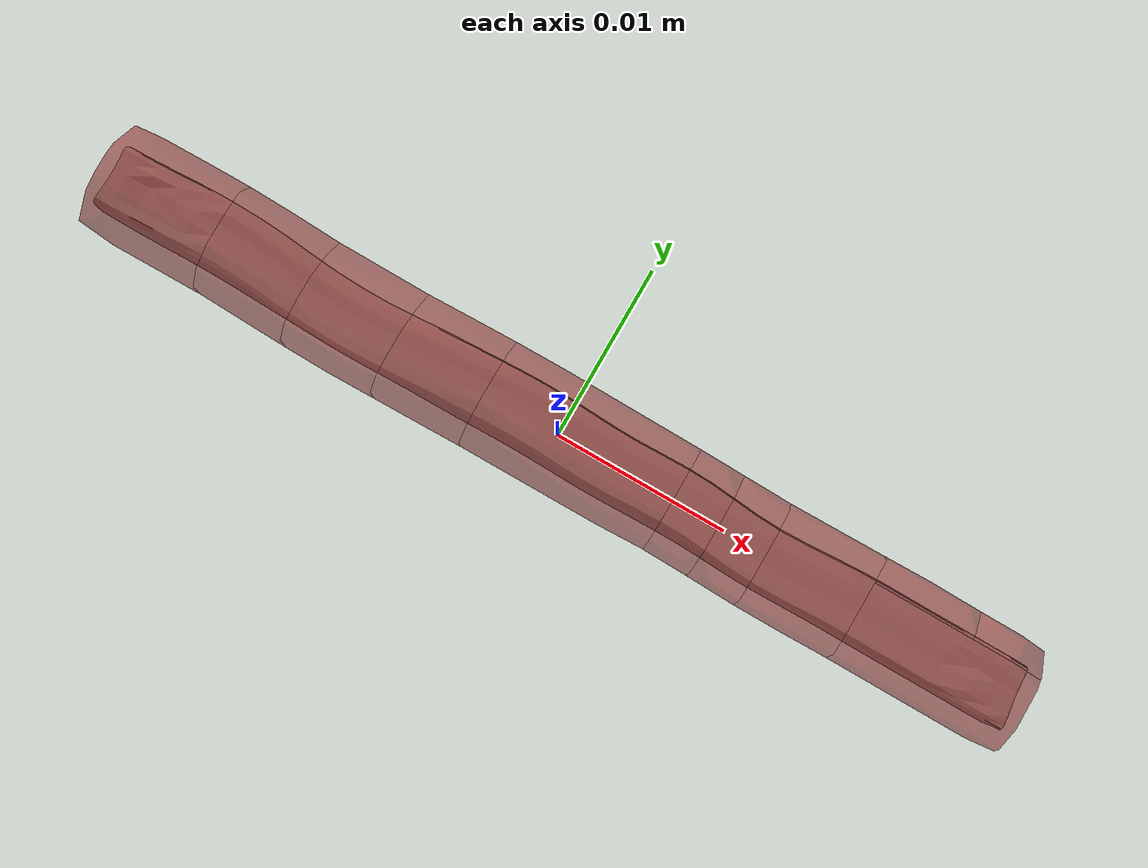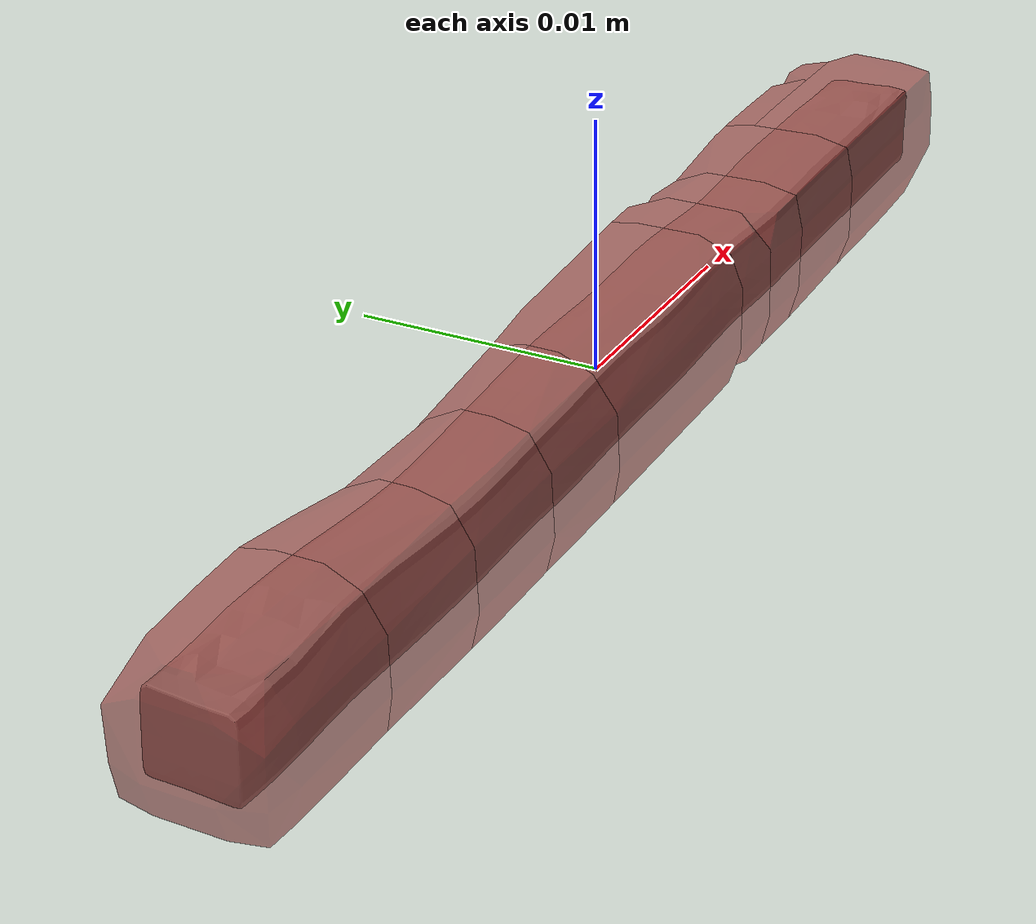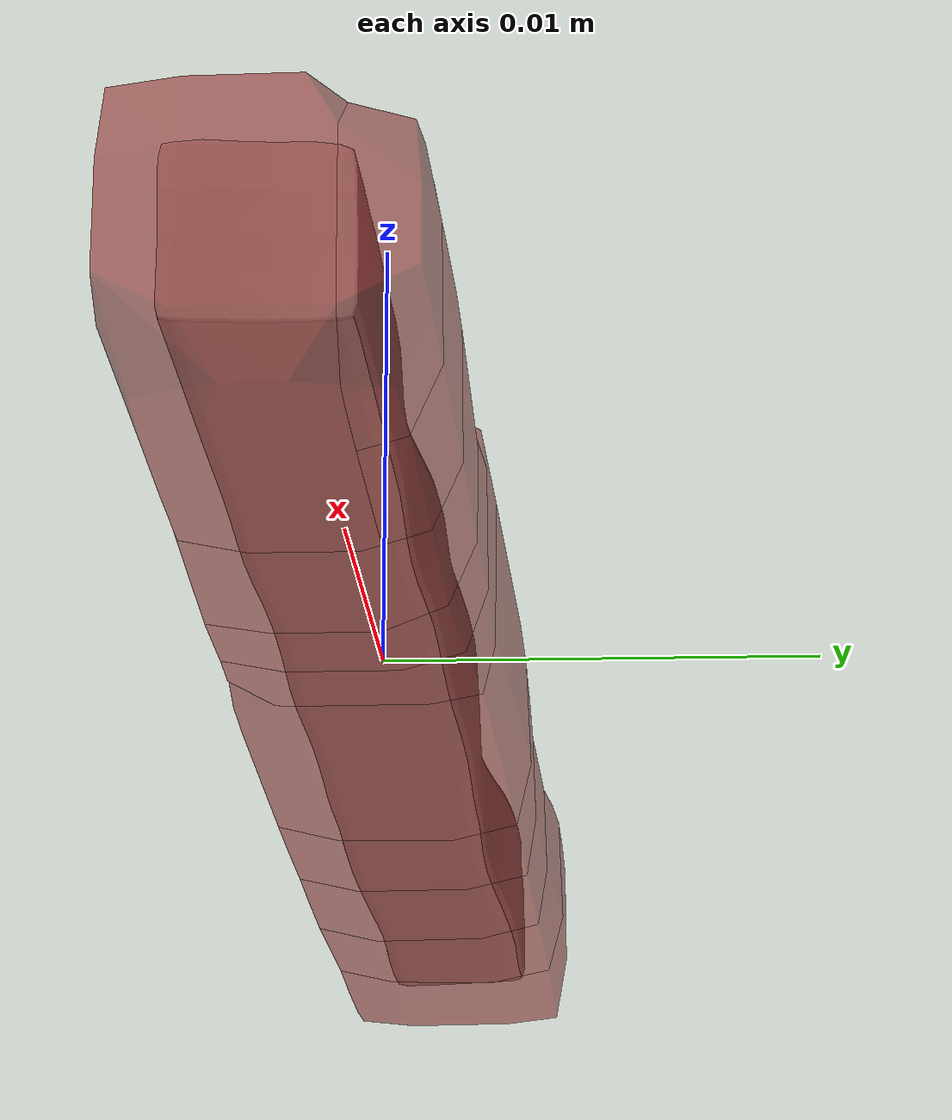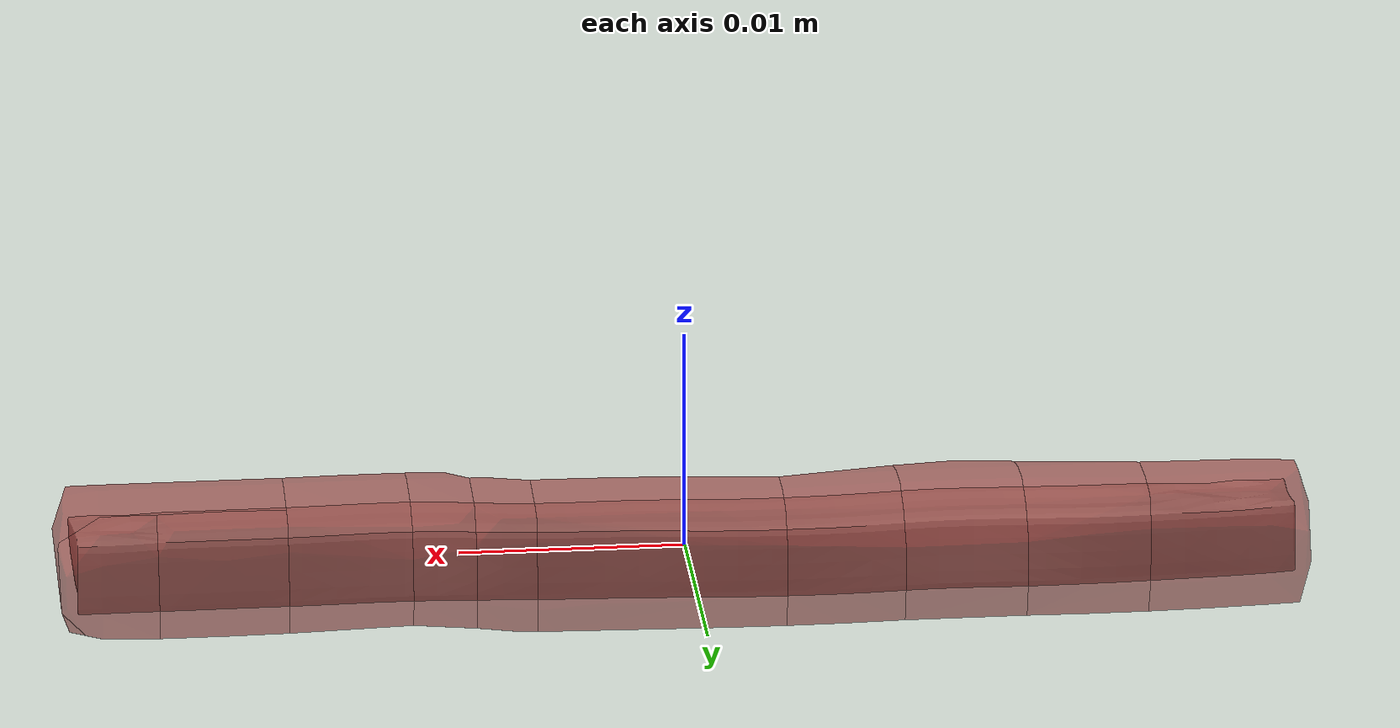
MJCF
<mujoco model="model">
  <compiler angle="radian"/>
  <asset>
    <mesh file="visual/CreamCheese004.obj" name="CreamCheese004_vis"/>
    <texture file="visual/T_BC001.png" name="CreamCheese004_material" type="2d"/>
    <material name="CreamCheese004_material" rgba="1 1 1 1.0" texture="CreamCheese004_material" shininess="0.5" specular="0.3103448502657381"/>
    <mesh file="collision/CreamCheese004006.obj" name="CreamCheese004006_mesh"/>
    <mesh file="collision/CreamCheese004005.obj" name="CreamCheese004005_mesh"/>
    <mesh file="collision/CreamCheese004007.obj" name="CreamCheese004007_mesh"/>
    <mesh file="collision/CreamCheese004011.obj" name="CreamCheese004011_mesh"/>
    <mesh file="collision/CreamCheese004008.obj" name="CreamCheese004008_mesh"/>
    <mesh file="collision/CreamCheese004010.obj" name="CreamCheese004010_mesh"/>
    <mesh file="collision/CreamCheese004003.obj" name="CreamCheese004003_mesh"/>
    <mesh file="collision/CreamCheese004001.obj" name="CreamCheese004001_mesh"/>
    <mesh file="collision/CreamCheese004004.obj" name="CreamCheese004004_mesh"/>
    <mesh file="collision/CreamCheese004002.obj" name="CreamCheese004002_mesh"/>
    <mesh file="collision/CreamCheese004009.obj" name="CreamCheese004009_mesh"/>
  </asset>
  <default>
    <default class="visual">
      <geom conaffinity="0" contype="0" group="1" type="mesh"/>
    </default>
    <default class="collision">
      <geom group="0" rgba="0.5 0 0 0.5"/>
    </default>
    <default class="spawn">
      <geom group="0" rgba="1 1 1 0.5" contype="0" conaffinity="0"/>
      <site group="0" rgba="1 1 1 0.5"/>
    </default>
    <default class="region">
      <geom group="1" conaffinity="0" contype="0" rgba="0 1 0 0" mass="0"/>
    </default>
  </default>
  <worldbody>
    <body>
      <body name="object">
        <geom mesh="CreamCheese004_vis" type="mesh" solimp="0.998 0.998 0.001" solref="0.001 1" density="100" friction="0.95 0.3 0.1" class="visual" material="CreamCheese004_material"/>
        <geom mesh="CreamCheese004006_mesh" type="mesh" class="collision"/>
        <geom mesh="CreamCheese004005_mesh" type="mesh" class="collision"/>
        <geom mesh="CreamCheese004007_mesh" type="mesh" class="collision"/>
        <geom mesh="CreamCheese004011_mesh" type="mesh" class="collision"/>
        <geom mesh="CreamCheese004008_mesh" type="mesh" class="collision"/>
        <geom mesh="CreamCheese004010_mesh" type="mesh" class="collision"/>
        <geom mesh="CreamCheese004003_mesh" type="mesh" class="collision"/>
        <geom mesh="CreamCheese004001_mesh" type="mesh" class="collision"/>
        <geom mesh="CreamCheese004004_mesh" type="mesh" class="collision"/>
        <geom mesh="CreamCheese004002_mesh" type="mesh" class="collision"/>
        <geom mesh="CreamCheese004009_mesh" type="mesh" class="collision"/>
        <geom class="region" name="reg_bbox" type="box" pos="-1.670500000000054e-05 -3.500000000000031e-06 -5.868500000000016e-05" size="0.027873345 0.00320195 0.003148545"/>
      </body>
    </body>
  </worldbody>
  <actuator/>
</mujoco>
